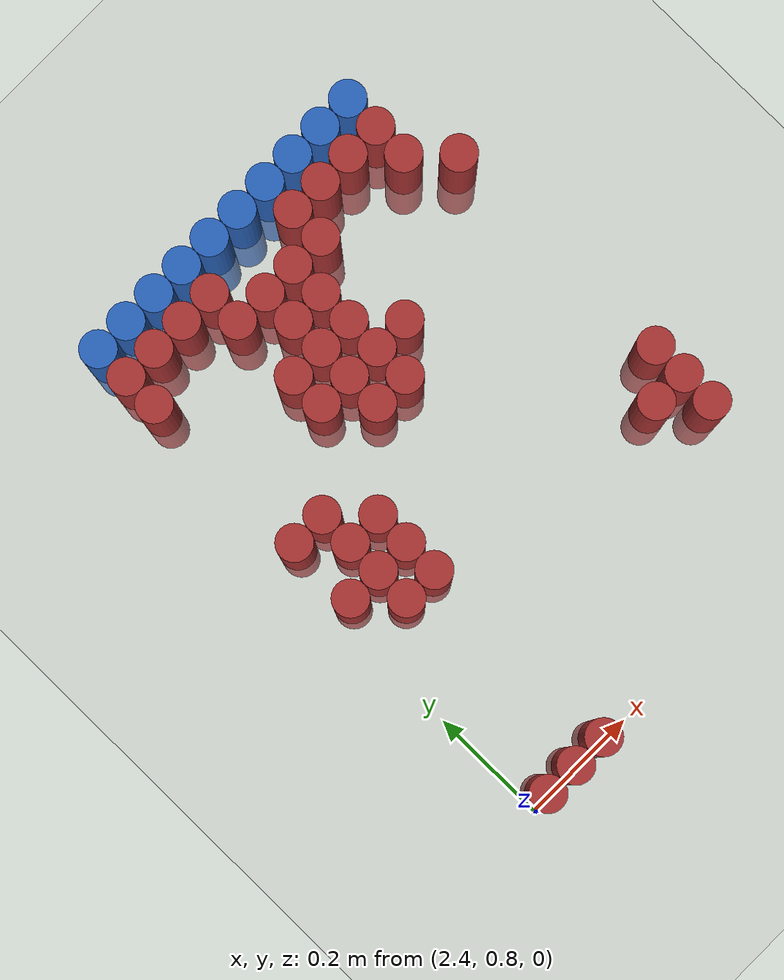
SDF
<sdf version="1.6">
 <world name="default">
  <model name="ground_plane">
   <static>1</static>
   <link name="link">
    <collision name="collision">
     <geometry><plane><normal>0 0 1</normal><size>100 100</size></plane></geometry>
     <surface><friction><ode><mu>100</mu><mu2>50</mu2></ode></friction></surface>
    </collision>
    <visual name="visual">
     <cast_shadows>0</cast_shadows>
     <geometry><plane><normal>0 0 1</normal><size>100 100</size></plane></geometry>
     <material>
      <script><uri>file://media/materials/scripts/gazebo.material</uri><name>Gazebo/Grey</name></script>
     </material>
    </visual>
   </link>
  </model>
  <model name="unit_cylinder_101">
   <static>1</static>
   <pose>2.430000 1.770000 0.000000 0.000000 0.000000 0.000000</pose>
   <link name="link">
    <inertial>
     <mass>1</mass>
     <inertia><ixx>0.145833</ixx><ixy>0</ixy><ixz>0</ixz><iyy>0.145833</iyy><iyz>0</iyz><izz>0.125</izz></inertia>
    </inertial>
    <collision name="collision">
     <geometry><cylinder><radius>0.030000</radius><length>0.5</length></cylinder></geometry>
    </collision>
    <visual name="visual">
     <geometry><cylinder><radius>0.030000</radius><length>0.5</length></cylinder></geometry>
     <material>
      <ambient>0.152000 0.379000 0.720000 1</ambient>
      <diffuse>0.152000 0.379000 0.720000 1</diffuse>
     </material>
     <material>
      <script><name>Gazebo/Grey</name><uri>file://media/materials/scripts/gazebo.material</uri></script>
     </material>
    </visual>
   </link>
  </model>
  <model name="unit_cylinder_102">
   <static>1</static>
   <pose>2.490000 1.770000 0.000000 0.000000 0.000000 0.000000</pose>
   <link name="link">
    <inertial>
     <mass>1</mass>
     <inertia><ixx>0.145833</ixx><ixy>0</ixy><ixz>0</ixz><iyy>0.145833</iyy><iyz>0</iyz><izz>0.125</izz></inertia>
    </inertial>
    <collision name="collision">
     <geometry><cylinder><radius>0.030000</radius><length>0.5</length></cylinder></geometry>
    </collision>
    <visual name="visual">
     <geometry><cylinder><radius>0.030000</radius><length>0.5</length></cylinder></geometry>
     <material>
      <ambient>0.152000 0.379000 0.720000 1</ambient>
      <diffuse>0.152000 0.379000 0.720000 1</diffuse>
     </material>
     <material>
      <script><name>Gazebo/Grey</name><uri>file://media/materials/scripts/gazebo.material</uri></script>
     </material>
    </visual>
   </link>
  </model>
  <model name="unit_cylinder_103">
   <static>1</static>
   <pose>2.550000 1.770000 0.000000 0.000000 0.000000 0.000000</pose>
   <link name="link">
    <inertial>
     <mass>1</mass>
     <inertia><ixx>0.145833</ixx><ixy>0</ixy><ixz>0</ixz><iyy>0.145833</iyy><iyz>0</iyz><izz>0.125</izz></inertia>
    </inertial>
    <collision name="collision">
     <geometry><cylinder><radius>0.030000</radius><length>0.5</length></cylinder></geometry>
    </collision>
    <visual name="visual">
     <geometry><cylinder><radius>0.030000</radius><length>0.5</length></cylinder></geometry>
     <material>
      <ambient>0.152000 0.379000 0.720000 1</ambient>
      <diffuse>0.152000 0.379000 0.720000 1</diffuse>
     </material>
     <material>
      <script><name>Gazebo/Grey</name><uri>file://media/materials/scripts/gazebo.material</uri></script>
     </material>
    </visual>
   </link>
  </model>
  <model name="unit_cylinder_104">
   <static>1</static>
   <pose>2.610000 1.770000 0.000000 0.000000 0.000000 0.000000</pose>
   <link name="link">
    <inertial>
     <mass>1</mass>
     <inertia><ixx>0.145833</ixx><ixy>0</ixy><ixz>0</ixz><iyy>0.145833</iyy><iyz>0</iyz><izz>0.125</izz></inertia>
    </inertial>
    <collision name="collision">
     <geometry><cylinder><radius>0.030000</radius><length>0.5</length></cylinder></geometry>
    </collision>
    <visual name="visual">
     <geometry><cylinder><radius>0.030000</radius><length>0.5</length></cylinder></geometry>
     <material>
      <ambient>0.152000 0.379000 0.720000 1</ambient>
      <diffuse>0.152000 0.379000 0.720000 1</diffuse>
     </material>
     <material>
      <script><name>Gazebo/Grey</name><uri>file://media/materials/scripts/gazebo.material</uri></script>
     </material>
    </visual>
   </link>
  </model>
  <model name="unit_cylinder_105">
   <static>1</static>
   <pose>2.670000 1.770000 0.000000 0.000000 0.000000 0.000000</pose>
   <link name="link">
    <inertial>
     <mass>1</mass>
     <inertia><ixx>0.145833</ixx><ixy>0</ixy><ixz>0</ixz><iyy>0.145833</iyy><iyz>0</iyz><izz>0.125</izz></inertia>
    </inertial>
    <collision name="collision">
     <geometry><cylinder><radius>0.030000</radius><length>0.5</length></cylinder></geometry>
    </collision>
    <visual name="visual">
     <geometry><cylinder><radius>0.030000</radius><length>0.5</length></cylinder></geometry>
     <material>
      <ambient>0.152000 0.379000 0.720000 1</ambient>
      <diffuse>0.152000 0.379000 0.720000 1</diffuse>
     </material>
     <material>
      <script><name>Gazebo/Grey</name><uri>file://media/materials/scripts/gazebo.material</uri></script>
     </material>
    </visual>
   </link>
  </model>
  <model name="unit_cylinder_106">
   <static>1</static>
   <pose>2.730000 1.770000 0.000000 0.000000 0.000000 0.000000</pose>
   <link name="link">
    <inertial>
     <mass>1</mass>
     <inertia><ixx>0.145833</ixx><ixy>0</ixy><ixz>0</ixz><iyy>0.145833</iyy><iyz>0</iyz><izz>0.125</izz></inertia>
    </inertial>
    <collision name="collision">
     <geometry><cylinder><radius>0.030000</radius><length>0.5</length></cylinder></geometry>
    </collision>
    <visual name="visual">
     <geometry><cylinder><radius>0.030000</radius><length>0.5</length></cylinder></geometry>
     <material>
      <ambient>0.152000 0.379000 0.720000 1</ambient>
      <diffuse>0.152000 0.379000 0.720000 1</diffuse>
     </material>
     <material>
      <script><name>Gazebo/Grey</name><uri>file://media/materials/scripts/gazebo.material</uri></script>
     </material>
    </visual>
   </link>
  </model>
  <model name="unit_cylinder_107">
   <static>1</static>
   <pose>2.790000 1.770000 0.000000 0.000000 0.000000 0.000000</pose>
   <link name="link">
    <inertial>
     <mass>1</mass>
     <inertia><ixx>0.145833</ixx><ixy>0</ixy><ixz>0</ixz><iyy>0.145833</iyy><iyz>0</iyz><izz>0.125</izz></inertia>
    </inertial>
    <collision name="collision">
     <geometry><cylinder><radius>0.030000</radius><length>0.5</length></cylinder></geometry>
    </collision>
    <visual name="visual">
     <geometry><cylinder><radius>0.030000</radius><length>0.5</length></cylinder></geometry>
     <material>
      <ambient>0.152000 0.379000 0.720000 1</ambient>
      <diffuse>0.152000 0.379000 0.720000 1</diffuse>
     </material>
     <material>
      <script><name>Gazebo/Grey</name><uri>file://media/materials/scripts/gazebo.material</uri></script>
     </material>
    </visual>
   </link>
  </model>
  <model name="unit_cylinder_108">
   <static>1</static>
   <pose>2.850000 1.770000 0.000000 0.000000 0.000000 0.000000</pose>
   <link name="link">
    <inertial>
     <mass>1</mass>
     <inertia><ixx>0.145833</ixx><ixy>0</ixy><ixz>0</ixz><iyy>0.145833</iyy><iyz>0</iyz><izz>0.125</izz></inertia>
    </inertial>
    <collision name="collision">
     <geometry><cylinder><radius>0.030000</radius><length>0.5</length></cylinder></geometry>
    </collision>
    <visual name="visual">
     <geometry><cylinder><radius>0.030000</radius><length>0.5</length></cylinder></geometry>
     <material>
      <ambient>0.152000 0.379000 0.720000 1</ambient>
      <diffuse>0.152000 0.379000 0.720000 1</diffuse>
     </material>
     <material>
      <script><name>Gazebo/Grey</name><uri>file://media/materials/scripts/gazebo.material</uri></script>
     </material>
    </visual>
   </link>
  </model>
  <model name="unit_cylinder_109">
   <static>1</static>
   <pose>2.910000 1.770000 0.000000 0.000000 0.000000 0.000000</pose>
   <link name="link">
    <inertial>
     <mass>1</mass>
     <inertia><ixx>0.145833</ixx><ixy>0</ixy><ixz>0</ixz><iyy>0.145833</iyy><iyz>0</iyz><izz>0.125</izz></inertia>
    </inertial>
    <collision name="collision">
     <geometry><cylinder><radius>0.030000</radius><length>0.5</length></cylinder></geometry>
    </collision>
    <visual name="visual">
     <geometry><cylinder><radius>0.030000</radius><length>0.5</length></cylinder></geometry>
     <material>
      <ambient>0.152000 0.379000 0.720000 1</ambient>
      <diffuse>0.152000 0.379000 0.720000 1</diffuse>
     </material>
     <material>
      <script><name>Gazebo/Grey</name><uri>file://media/materials/scripts/gazebo.material</uri></script>
     </material>
    </visual>
   </link>
  </model>
  <model name="unit_cylinder_110">
   <static>1</static>
   <pose>2.970000 1.770000 0.000000 0.000000 0.000000 0.000000</pose>
   <link name="link">
    <inertial>
     <mass>1</mass>
     <inertia><ixx>0.145833</ixx><ixy>0</ixy><ixz>0</ixz><iyy>0.145833</iyy><iyz>0</iyz><izz>0.125</izz></inertia>
    </inertial>
    <collision name="collision">
     <geometry><cylinder><radius>0.030000</radius><length>0.5</length></cylinder></geometry>
    </collision>
    <visual name="visual">
     <geometry><cylinder><radius>0.030000</radius><length>0.5</length></cylinder></geometry>
     <material>
      <ambient>0.152000 0.379000 0.720000 1</ambient>
      <diffuse>0.152000 0.379000 0.720000 1</diffuse>
     </material>
     <material>
      <script><name>Gazebo/Grey</name><uri>file://media/materials/scripts/gazebo.material</uri></script>
     </material>
    </visual>
   </link>
  </model>
  <model name="unit_cylinder_131">
   <static>1</static>
   <pose>2.430000 1.710000 0.000000 0.000000 0.000000 0.000000</pose>
   <link name="link">
    <inertial>
     <mass>1</mass>
     <inertia><ixx>0.145833</ixx><ixy>0</ixy><ixz>0</ixz><iyy>0.145833</iyy><iyz>0</iyz><izz>0.125</izz></inertia>
    </inertial>
    <collision name="collision">
     <geometry><cylinder><radius>0.030000</radius><length>0.5</length></cylinder></geometry>
    </collision>
    <visual name="visual">
     <geometry><cylinder><radius>0.030000</radius><length>0.5</length></cylinder></geometry>
     <material>
      <ambient>0.648000 0.192000 0.192000 1</ambient>
      <diffuse>0.648000 0.192000 0.192000 1</diffuse>
     </material>
     <material>
      <script><name>Gazebo/Grey</name><uri>file://media/materials/scripts/gazebo.material</uri></script>
     </material>
    </visual>
   </link>
  </model>
  <model name="unit_cylinder_132">
   <static>1</static>
   <pose>2.490000 1.710000 0.000000 0.000000 0.000000 0.000000</pose>
   <link name="link">
    <inertial>
     <mass>1</mass>
     <inertia><ixx>0.145833</ixx><ixy>0</ixy><ixz>0</ixz><iyy>0.145833</iyy><iyz>0</iyz><izz>0.125</izz></inertia>
    </inertial>
    <collision name="collision">
     <geometry><cylinder><radius>0.030000</radius><length>0.5</length></cylinder></geometry>
    </collision>
    <visual name="visual">
     <geometry><cylinder><radius>0.030000</radius><length>0.5</length></cylinder></geometry>
     <material>
      <ambient>0.648000 0.192000 0.192000 1</ambient>
      <diffuse>0.648000 0.192000 0.192000 1</diffuse>
     </material>
     <material>
      <script><name>Gazebo/Grey</name><uri>file://media/materials/scripts/gazebo.material</uri></script>
     </material>
    </visual>
   </link>
  </model>
  <model name="unit_cylinder_133">
   <static>1</static>
   <pose>2.550000 1.710000 0.000000 0.000000 0.000000 0.000000</pose>
   <link name="link">
    <inertial>
     <mass>1</mass>
     <inertia><ixx>0.145833</ixx><ixy>0</ixy><ixz>0</ixz><iyy>0.145833</iyy><iyz>0</iyz><izz>0.125</izz></inertia>
    </inertial>
    <collision name="collision">
     <geometry><cylinder><radius>0.030000</radius><length>0.5</length></cylinder></geometry>
    </collision>
    <visual name="visual">
     <geometry><cylinder><radius>0.030000</radius><length>0.5</length></cylinder></geometry>
     <material>
      <ambient>0.648000 0.192000 0.192000 1</ambient>
      <diffuse>0.648000 0.192000 0.192000 1</diffuse>
     </material>
     <material>
      <script><name>Gazebo/Grey</name><uri>file://media/materials/scripts/gazebo.material</uri></script>
     </material>
    </visual>
   </link>
  </model>
  <model name="unit_cylinder_134">
   <static>1</static>
   <pose>2.610000 1.710000 0.000000 0.000000 0.000000 0.000000</pose>
   <link name="link">
    <inertial>
     <mass>1</mass>
     <inertia><ixx>0.145833</ixx><ixy>0</ixy><ixz>0</ixz><iyy>0.145833</iyy><iyz>0</iyz><izz>0.125</izz></inertia>
    </inertial>
    <collision name="collision">
     <geometry><cylinder><radius>0.030000</radius><length>0.5</length></cylinder></geometry>
    </collision>
    <visual name="visual">
     <geometry><cylinder><radius>0.030000</radius><length>0.5</length></cylinder></geometry>
     <material>
      <ambient>0.648000 0.192000 0.192000 1</ambient>
      <diffuse>0.648000 0.192000 0.192000 1</diffuse>
     </material>
     <material>
      <script><name>Gazebo/Grey</name><uri>file://media/materials/scripts/gazebo.material</uri></script>
     </material>
    </visual>
   </link>
  </model>
  <model name="unit_cylinder_135">
   <static>1</static>
   <pose>2.790000 1.710000 0.000000 0.000000 0.000000 0.000000</pose>
   <link name="link">
    <inertial>
     <mass>1</mass>
     <inertia><ixx>0.145833</ixx><ixy>0</ixy><ixz>0</ixz><iyy>0.145833</iyy><iyz>0</iyz><izz>0.125</izz></inertia>
    </inertial>
    <collision name="collision">
     <geometry><cylinder><radius>0.030000</radius><length>0.5</length></cylinder></geometry>
    </collision>
    <visual name="visual">
     <geometry><cylinder><radius>0.030000</radius><length>0.5</length></cylinder></geometry>
     <material>
      <ambient>0.648000 0.192000 0.192000 1</ambient>
      <diffuse>0.648000 0.192000 0.192000 1</diffuse>
     </material>
     <material>
      <script><name>Gazebo/Grey</name><uri>file://media/materials/scripts/gazebo.material</uri></script>
     </material>
    </visual>
   </link>
  </model>
  <model name="unit_cylinder_136">
   <static>1</static>
   <pose>2.850000 1.710000 0.000000 0.000000 0.000000 0.000000</pose>
   <link name="link">
    <inertial>
     <mass>1</mass>
     <inertia><ixx>0.145833</ixx><ixy>0</ixy><ixz>0</ixz><iyy>0.145833</iyy><iyz>0</iyz><izz>0.125</izz></inertia>
    </inertial>
    <collision name="collision">
     <geometry><cylinder><radius>0.030000</radius><length>0.5</length></cylinder></geometry>
    </collision>
    <visual name="visual">
     <geometry><cylinder><radius>0.030000</radius><length>0.5</length></cylinder></geometry>
     <material>
      <ambient>0.648000 0.192000 0.192000 1</ambient>
      <diffuse>0.648000 0.192000 0.192000 1</diffuse>
     </material>
     <material>
      <script><name>Gazebo/Grey</name><uri>file://media/materials/scripts/gazebo.material</uri></script>
     </material>
    </visual>
   </link>
  </model>
  <model name="unit_cylinder_137">
   <static>1</static>
   <pose>2.910000 1.710000 0.000000 0.000000 0.000000 0.000000</pose>
   <link name="link">
    <inertial>
     <mass>1</mass>
     <inertia><ixx>0.145833</ixx><ixy>0</ixy><ixz>0</ixz><iyy>0.145833</iyy><iyz>0</iyz><izz>0.125</izz></inertia>
    </inertial>
    <collision name="collision">
     <geometry><cylinder><radius>0.030000</radius><length>0.5</length></cylinder></geometry>
    </collision>
    <visual name="visual">
     <geometry><cylinder><radius>0.030000</radius><length>0.5</length></cylinder></geometry>
     <material>
      <ambient>0.648000 0.192000 0.192000 1</ambient>
      <diffuse>0.648000 0.192000 0.192000 1</diffuse>
     </material>
     <material>
      <script><name>Gazebo/Grey</name><uri>file://media/materials/scripts/gazebo.material</uri></script>
     </material>
    </visual>
   </link>
  </model>
  <model name="unit_cylinder_138">
   <static>1</static>
   <pose>2.970000 1.710000 0.000000 0.000000 0.000000 0.000000</pose>
   <link name="link">
    <inertial>
     <mass>1</mass>
     <inertia><ixx>0.145833</ixx><ixy>0</ixy><ixz>0</ixz><iyy>0.145833</iyy><iyz>0</iyz><izz>0.125</izz></inertia>
    </inertial>
    <collision name="collision">
     <geometry><cylinder><radius>0.030000</radius><length>0.5</length></cylinder></geometry>
    </collision>
    <visual name="visual">
     <geometry><cylinder><radius>0.030000</radius><length>0.5</length></cylinder></geometry>
     <material>
      <ambient>0.648000 0.192000 0.192000 1</ambient>
      <diffuse>0.648000 0.192000 0.192000 1</diffuse>
     </material>
     <material>
      <script><name>Gazebo/Grey</name><uri>file://media/materials/scripts/gazebo.material</uri></script>
     </material>
    </visual>
   </link>
  </model>
  <model name="unit_cylinder_148">
   <static>1</static>
   <pose>2.430000 1.650000 0.000000 0.000000 0.000000 0.000000</pose>
   <link name="link">
    <inertial>
     <mass>1</mass>
     <inertia><ixx>0.145833</ixx><ixy>0</ixy><ixz>0</ixz><iyy>0.145833</iyy><iyz>0</iyz><izz>0.125</izz></inertia>
    </inertial>
    <collision name="collision">
     <geometry><cylinder><radius>0.030000</radius><length>0.5</length></cylinder></geometry>
    </collision>
    <visual name="visual">
     <geometry><cylinder><radius>0.030000</radius><length>0.5</length></cylinder></geometry>
     <material>
      <ambient>0.648000 0.192000 0.192000 1</ambient>
      <diffuse>0.648000 0.192000 0.192000 1</diffuse>
     </material>
     <material>
      <script><name>Gazebo/Grey</name><uri>file://media/materials/scripts/gazebo.material</uri></script>
     </material>
    </visual>
   </link>
  </model>
  <model name="unit_cylinder_149">
   <static>1</static>
   <pose>2.610000 1.650000 0.000000 0.000000 0.000000 0.000000</pose>
   <link name="link">
    <inertial>
     <mass>1</mass>
     <inertia><ixx>0.145833</ixx><ixy>0</ixy><ixz>0</ixz><iyy>0.145833</iyy><iyz>0</iyz><izz>0.125</izz></inertia>
    </inertial>
    <collision name="collision">
     <geometry><cylinder><radius>0.030000</radius><length>0.5</length></cylinder></geometry>
    </collision>
    <visual name="visual">
     <geometry><cylinder><radius>0.030000</radius><length>0.5</length></cylinder></geometry>
     <material>
      <ambient>0.648000 0.192000 0.192000 1</ambient>
      <diffuse>0.648000 0.192000 0.192000 1</diffuse>
     </material>
     <material>
      <script><name>Gazebo/Grey</name><uri>file://media/materials/scripts/gazebo.material</uri></script>
     </material>
    </visual>
   </link>
  </model>
  <model name="unit_cylinder_150">
   <static>1</static>
   <pose>2.670000 1.650000 0.000000 0.000000 0.000000 0.000000</pose>
   <link name="link">
    <inertial>
     <mass>1</mass>
     <inertia><ixx>0.145833</ixx><ixy>0</ixy><ixz>0</ixz><iyy>0.145833</iyy><iyz>0</iyz><izz>0.125</izz></inertia>
    </inertial>
    <collision name="collision">
     <geometry><cylinder><radius>0.030000</radius><length>0.5</length></cylinder></geometry>
    </collision>
    <visual name="visual">
     <geometry><cylinder><radius>0.030000</radius><length>0.5</length></cylinder></geometry>
     <material>
      <ambient>0.648000 0.192000 0.192000 1</ambient>
      <diffuse>0.648000 0.192000 0.192000 1</diffuse>
     </material>
     <material>
      <script><name>Gazebo/Grey</name><uri>file://media/materials/scripts/gazebo.material</uri></script>
     </material>
    </visual>
   </link>
  </model>
  <model name="unit_cylinder_151">
   <static>1</static>
   <pose>2.730000 1.650000 0.000000 0.000000 0.000000 0.000000</pose>
   <link name="link">
    <inertial>
     <mass>1</mass>
     <inertia><ixx>0.145833</ixx><ixy>0</ixy><ixz>0</ixz><iyy>0.145833</iyy><iyz>0</iyz><izz>0.125</izz></inertia>
    </inertial>
    <collision name="collision">
     <geometry><cylinder><radius>0.030000</radius><length>0.5</length></cylinder></geometry>
    </collision>
    <visual name="visual">
     <geometry><cylinder><radius>0.030000</radius><length>0.5</length></cylinder></geometry>
     <material>
      <ambient>0.648000 0.192000 0.192000 1</ambient>
      <diffuse>0.648000 0.192000 0.192000 1</diffuse>
     </material>
     <material>
      <script><name>Gazebo/Grey</name><uri>file://media/materials/scripts/gazebo.material</uri></script>
     </material>
    </visual>
   </link>
  </model>
  <model name="unit_cylinder_152">
   <static>1</static>
   <pose>2.790000 1.650000 0.000000 0.000000 0.000000 0.000000</pose>
   <link name="link">
    <inertial>
     <mass>1</mass>
     <inertia><ixx>0.145833</ixx><ixy>0</ixy><ixz>0</ixz><iyy>0.145833</iyy><iyz>0</iyz><izz>0.125</izz></inertia>
    </inertial>
    <collision name="collision">
     <geometry><cylinder><radius>0.030000</radius><length>0.5</length></cylinder></geometry>
    </collision>
    <visual name="visual">
     <geometry><cylinder><radius>0.030000</radius><length>0.5</length></cylinder></geometry>
     <material>
      <ambient>0.648000 0.192000 0.192000 1</ambient>
      <diffuse>0.648000 0.192000 0.192000 1</diffuse>
     </material>
     <material>
      <script><name>Gazebo/Grey</name><uri>file://media/materials/scripts/gazebo.material</uri></script>
     </material>
    </visual>
   </link>
  </model>
  <model name="unit_cylinder_153">
   <static>1</static>
   <pose>2.970000 1.650000 0.000000 0.000000 0.000000 0.000000</pose>
   <link name="link">
    <inertial>
     <mass>1</mass>
     <inertia><ixx>0.145833</ixx><ixy>0</ixy><ixz>0</ixz><iyy>0.145833</iyy><iyz>0</iyz><izz>0.125</izz></inertia>
    </inertial>
    <collision name="collision">
     <geometry><cylinder><radius>0.030000</radius><length>0.5</length></cylinder></geometry>
    </collision>
    <visual name="visual">
     <geometry><cylinder><radius>0.030000</radius><length>0.5</length></cylinder></geometry>
     <material>
      <ambient>0.648000 0.192000 0.192000 1</ambient>
      <diffuse>0.648000 0.192000 0.192000 1</diffuse>
     </material>
     <material>
      <script><name>Gazebo/Grey</name><uri>file://media/materials/scripts/gazebo.material</uri></script>
     </material>
    </visual>
   </link>
  </model>
  <model name="unit_cylinder_156">
   <static>1</static>
   <pose>2.670000 1.590000 0.000000 0.000000 0.000000 0.000000</pose>
   <link name="link">
    <inertial>
     <mass>1</mass>
     <inertia><ixx>0.145833</ixx><ixy>0</ixy><ixz>0</ixz><iyy>0.145833</iyy><iyz>0</iyz><izz>0.125</izz></inertia>
    </inertial>
    <collision name="collision">
     <geometry><cylinder><radius>0.030000</radius><length>0.5</length></cylinder></geometry>
    </collision>
    <visual name="visual">
     <geometry><cylinder><radius>0.030000</radius><length>0.5</length></cylinder></geometry>
     <material>
      <ambient>0.648000 0.192000 0.192000 1</ambient>
      <diffuse>0.648000 0.192000 0.192000 1</diffuse>
     </material>
     <material>
      <script><name>Gazebo/Grey</name><uri>file://media/materials/scripts/gazebo.material</uri></script>
     </material>
    </visual>
   </link>
  </model>
  <model name="unit_cylinder_157">
   <static>1</static>
   <pose>2.730000 1.590000 0.000000 0.000000 0.000000 0.000000</pose>
   <link name="link">
    <inertial>
     <mass>1</mass>
     <inertia><ixx>0.145833</ixx><ixy>0</ixy><ixz>0</ixz><iyy>0.145833</iyy><iyz>0</iyz><izz>0.125</izz></inertia>
    </inertial>
    <collision name="collision">
     <geometry><cylinder><radius>0.030000</radius><length>0.5</length></cylinder></geometry>
    </collision>
    <visual name="visual">
     <geometry><cylinder><radius>0.030000</radius><length>0.5</length></cylinder></geometry>
     <material>
      <ambient>0.648000 0.192000 0.192000 1</ambient>
      <diffuse>0.648000 0.192000 0.192000 1</diffuse>
     </material>
     <material>
      <script><name>Gazebo/Grey</name><uri>file://media/materials/scripts/gazebo.material</uri></script>
     </material>
    </visual>
   </link>
  </model>
  <model name="unit_cylinder_158">
   <static>1</static>
   <pose>3.030000 1.590000 0.000000 0.000000 0.000000 0.000000</pose>
   <link name="link">
    <inertial>
     <mass>1</mass>
     <inertia><ixx>0.145833</ixx><ixy>0</ixy><ixz>0</ixz><iyy>0.145833</iyy><iyz>0</iyz><izz>0.125</izz></inertia>
    </inertial>
    <collision name="collision">
     <geometry><cylinder><radius>0.030000</radius><length>0.5</length></cylinder></geometry>
    </collision>
    <visual name="visual">
     <geometry><cylinder><radius>0.030000</radius><length>0.5</length></cylinder></geometry>
     <material>
      <ambient>0.648000 0.192000 0.192000 1</ambient>
      <diffuse>0.648000 0.192000 0.192000 1</diffuse>
     </material>
     <material>
      <script><name>Gazebo/Grey</name><uri>file://media/materials/scripts/gazebo.material</uri></script>
     </material>
    </visual>
   </link>
  </model>
  <model name="unit_cylinder_161">
   <static>1</static>
   <pose>2.610000 1.530000 0.000000 0.000000 0.000000 0.000000</pose>
   <link name="link">
    <inertial>
     <mass>1</mass>
     <inertia><ixx>0.145833</ixx><ixy>0</ixy><ixz>0</ixz><iyy>0.145833</iyy><iyz>0</iyz><izz>0.125</izz></inertia>
    </inertial>
    <collision name="collision">
     <geometry><cylinder><radius>0.030000</radius><length>0.5</length></cylinder></geometry>
    </collision>
    <visual name="visual">
     <geometry><cylinder><radius>0.030000</radius><length>0.5</length></cylinder></geometry>
     <material>
      <ambient>0.648000 0.192000 0.192000 1</ambient>
      <diffuse>0.648000 0.192000 0.192000 1</diffuse>
     </material>
     <material>
      <script><name>Gazebo/Grey</name><uri>file://media/materials/scripts/gazebo.material</uri></script>
     </material>
    </visual>
   </link>
  </model>
  <model name="unit_cylinder_162">
   <static>1</static>
   <pose>2.670000 1.530000 0.000000 0.000000 0.000000 0.000000</pose>
   <link name="link">
    <inertial>
     <mass>1</mass>
     <inertia><ixx>0.145833</ixx><ixy>0</ixy><ixz>0</ixz><iyy>0.145833</iyy><iyz>0</iyz><izz>0.125</izz></inertia>
    </inertial>
    <collision name="collision">
     <geometry><cylinder><radius>0.030000</radius><length>0.5</length></cylinder></geometry>
    </collision>
    <visual name="visual">
     <geometry><cylinder><radius>0.030000</radius><length>0.5</length></cylinder></geometry>
     <material>
      <ambient>0.648000 0.192000 0.192000 1</ambient>
      <diffuse>0.648000 0.192000 0.192000 1</diffuse>
     </material>
     <material>
      <script><name>Gazebo/Grey</name><uri>file://media/materials/scripts/gazebo.material</uri></script>
     </material>
    </visual>
   </link>
  </model>
  <model name="unit_cylinder_163">
   <static>1</static>
   <pose>2.730000 1.530000 0.000000 0.000000 0.000000 0.000000</pose>
   <link name="link">
    <inertial>
     <mass>1</mass>
     <inertia><ixx>0.145833</ixx><ixy>0</ixy><ixz>0</ixz><iyy>0.145833</iyy><iyz>0</iyz><izz>0.125</izz></inertia>
    </inertial>
    <collision name="collision">
     <geometry><cylinder><radius>0.030000</radius><length>0.5</length></cylinder></geometry>
    </collision>
    <visual name="visual">
     <geometry><cylinder><radius>0.030000</radius><length>0.5</length></cylinder></geometry>
     <material>
      <ambient>0.648000 0.192000 0.192000 1</ambient>
      <diffuse>0.648000 0.192000 0.192000 1</diffuse>
     </material>
     <material>
      <script><name>Gazebo/Grey</name><uri>file://media/materials/scripts/gazebo.material</uri></script>
     </material>
    </visual>
   </link>
  </model>
  <model name="unit_cylinder_166">
   <static>1</static>
   <pose>2.610000 1.470000 0.000000 0.000000 0.000000 0.000000</pose>
   <link name="link">
    <inertial>
     <mass>1</mass>
     <inertia><ixx>0.145833</ixx><ixy>0</ixy><ixz>0</ixz><iyy>0.145833</iyy><iyz>0</iyz><izz>0.125</izz></inertia>
    </inertial>
    <collision name="collision">
     <geometry><cylinder><radius>0.030000</radius><length>0.5</length></cylinder></geometry>
    </collision>
    <visual name="visual">
     <geometry><cylinder><radius>0.030000</radius><length>0.5</length></cylinder></geometry>
     <material>
      <ambient>0.648000 0.192000 0.192000 1</ambient>
      <diffuse>0.648000 0.192000 0.192000 1</diffuse>
     </material>
     <material>
      <script><name>Gazebo/Grey</name><uri>file://media/materials/scripts/gazebo.material</uri></script>
     </material>
    </visual>
   </link>
  </model>
  <model name="unit_cylinder_167">
   <static>1</static>
   <pose>2.670000 1.470000 0.000000 0.000000 0.000000 0.000000</pose>
   <link name="link">
    <inertial>
     <mass>1</mass>
     <inertia><ixx>0.145833</ixx><ixy>0</ixy><ixz>0</ixz><iyy>0.145833</iyy><iyz>0</iyz><izz>0.125</izz></inertia>
    </inertial>
    <collision name="collision">
     <geometry><cylinder><radius>0.030000</radius><length>0.5</length></cylinder></geometry>
    </collision>
    <visual name="visual">
     <geometry><cylinder><radius>0.030000</radius><length>0.5</length></cylinder></geometry>
     <material>
      <ambient>0.648000 0.192000 0.192000 1</ambient>
      <diffuse>0.648000 0.192000 0.192000 1</diffuse>
     </material>
     <material>
      <script><name>Gazebo/Grey</name><uri>file://media/materials/scripts/gazebo.material</uri></script>
     </material>
    </visual>
   </link>
  </model>
  <model name="unit_cylinder_168">
   <static>1</static>
   <pose>2.730000 1.470000 0.000000 0.000000 0.000000 0.000000</pose>
   <link name="link">
    <inertial>
     <mass>1</mass>
     <inertia><ixx>0.145833</ixx><ixy>0</ixy><ixz>0</ixz><iyy>0.145833</iyy><iyz>0</iyz><izz>0.125</izz></inertia>
    </inertial>
    <collision name="collision">
     <geometry><cylinder><radius>0.030000</radius><length>0.5</length></cylinder></geometry>
    </collision>
    <visual name="visual">
     <geometry><cylinder><radius>0.030000</radius><length>0.5</length></cylinder></geometry>
     <material>
      <ambient>0.648000 0.192000 0.192000 1</ambient>
      <diffuse>0.648000 0.192000 0.192000 1</diffuse>
     </material>
     <material>
      <script><name>Gazebo/Grey</name><uri>file://media/materials/scripts/gazebo.material</uri></script>
     </material>
    </visual>
   </link>
  </model>
  <model name="unit_cylinder_169">
   <static>1</static>
   <pose>2.790000 1.470000 0.000000 0.000000 0.000000 0.000000</pose>
   <link name="link">
    <inertial>
     <mass>1</mass>
     <inertia><ixx>0.145833</ixx><ixy>0</ixy><ixz>0</ixz><iyy>0.145833</iyy><iyz>0</iyz><izz>0.125</izz></inertia>
    </inertial>
    <collision name="collision">
     <geometry><cylinder><radius>0.030000</radius><length>0.5</length></cylinder></geometry>
    </collision>
    <visual name="visual">
     <geometry><cylinder><radius>0.030000</radius><length>0.5</length></cylinder></geometry>
     <material>
      <ambient>0.648000 0.192000 0.192000 1</ambient>
      <diffuse>0.648000 0.192000 0.192000 1</diffuse>
     </material>
     <material>
      <script><name>Gazebo/Grey</name><uri>file://media/materials/scripts/gazebo.material</uri></script>
     </material>
    </visual>
   </link>
  </model>
  <model name="unit_cylinder_176">
   <static>1</static>
   <pose>2.670000 1.410000 0.000000 0.000000 0.000000 0.000000</pose>
   <link name="link">
    <inertial>
     <mass>1</mass>
     <inertia><ixx>0.145833</ixx><ixy>0</ixy><ixz>0</ixz><iyy>0.145833</iyy><iyz>0</iyz><izz>0.125</izz></inertia>
    </inertial>
    <collision name="collision">
     <geometry><cylinder><radius>0.030000</radius><length>0.5</length></cylinder></geometry>
    </collision>
    <visual name="visual">
     <geometry><cylinder><radius>0.030000</radius><length>0.5</length></cylinder></geometry>
     <material>
      <ambient>0.648000 0.192000 0.192000 1</ambient>
      <diffuse>0.648000 0.192000 0.192000 1</diffuse>
     </material>
     <material>
      <script><name>Gazebo/Grey</name><uri>file://media/materials/scripts/gazebo.material</uri></script>
     </material>
    </visual>
   </link>
  </model>
  <model name="unit_cylinder_177">
   <static>1</static>
   <pose>2.730000 1.410000 0.000000 0.000000 0.000000 0.000000</pose>
   <link name="link">
    <inertial>
     <mass>1</mass>
     <inertia><ixx>0.145833</ixx><ixy>0</ixy><ixz>0</ixz><iyy>0.145833</iyy><iyz>0</iyz><izz>0.125</izz></inertia>
    </inertial>
    <collision name="collision">
     <geometry><cylinder><radius>0.030000</radius><length>0.5</length></cylinder></geometry>
    </collision>
    <visual name="visual">
     <geometry><cylinder><radius>0.030000</radius><length>0.5</length></cylinder></geometry>
     <material>
      <ambient>0.648000 0.192000 0.192000 1</ambient>
      <diffuse>0.648000 0.192000 0.192000 1</diffuse>
     </material>
     <material>
      <script><name>Gazebo/Grey</name><uri>file://media/materials/scripts/gazebo.material</uri></script>
     </material>
    </visual>
   </link>
  </model>
  <model name="unit_cylinder_188">
   <static>1</static>
   <pose>2.430000 1.350000 0.000000 0.000000 0.000000 0.000000</pose>
   <link name="link">
    <inertial>
     <mass>1</mass>
     <inertia><ixx>0.145833</ixx><ixy>0</ixy><ixz>0</ixz><iyy>0.145833</iyy><iyz>0</iyz><izz>0.125</izz></inertia>
    </inertial>
    <collision name="collision">
     <geometry><cylinder><radius>0.030000</radius><length>0.5</length></cylinder></geometry>
    </collision>
    <visual name="visual">
     <geometry><cylinder><radius>0.030000</radius><length>0.5</length></cylinder></geometry>
     <material>
      <ambient>0.648000 0.192000 0.192000 1</ambient>
      <diffuse>0.648000 0.192000 0.192000 1</diffuse>
     </material>
     <material>
      <script><name>Gazebo/Grey</name><uri>file://media/materials/scripts/gazebo.material</uri></script>
     </material>
    </visual>
   </link>
  </model>
  <model name="unit_cylinder_189">
   <static>1</static>
   <pose>2.490000 1.350000 0.000000 0.000000 0.000000 0.000000</pose>
   <link name="link">
    <inertial>
     <mass>1</mass>
     <inertia><ixx>0.145833</ixx><ixy>0</ixy><ixz>0</ixz><iyy>0.145833</iyy><iyz>0</iyz><izz>0.125</izz></inertia>
    </inertial>
    <collision name="collision">
     <geometry><cylinder><radius>0.030000</radius><length>0.5</length></cylinder></geometry>
    </collision>
    <visual name="visual">
     <geometry><cylinder><radius>0.030000</radius><length>0.5</length></cylinder></geometry>
     <material>
      <ambient>0.648000 0.192000 0.192000 1</ambient>
      <diffuse>0.648000 0.192000 0.192000 1</diffuse>
     </material>
     <material>
      <script><name>Gazebo/Grey</name><uri>file://media/materials/scripts/gazebo.material</uri></script>
     </material>
    </visual>
   </link>
  </model>
  <model name="unit_cylinder_197">
   <static>1</static>
   <pose>2.490000 1.290000 0.000000 0.000000 0.000000 0.000000</pose>
   <link name="link">
    <inertial>
     <mass>1</mass>
     <inertia><ixx>0.145833</ixx><ixy>0</ixy><ixz>0</ixz><iyy>0.145833</iyy><iyz>0</iyz><izz>0.125</izz></inertia>
    </inertial>
    <collision name="collision">
     <geometry><cylinder><radius>0.030000</radius><length>0.5</length></cylinder></geometry>
    </collision>
    <visual name="visual">
     <geometry><cylinder><radius>0.030000</radius><length>0.5</length></cylinder></geometry>
     <material>
      <ambient>0.648000 0.192000 0.192000 1</ambient>
      <diffuse>0.648000 0.192000 0.192000 1</diffuse>
     </material>
     <material>
      <script><name>Gazebo/Grey</name><uri>file://media/materials/scripts/gazebo.material</uri></script>
     </material>
    </visual>
   </link>
  </model>
  <model name="unit_cylinder_198">
   <static>1</static>
   <pose>2.550000 1.290000 0.000000 0.000000 0.000000 0.000000</pose>
   <link name="link">
    <inertial>
     <mass>1</mass>
     <inertia><ixx>0.145833</ixx><ixy>0</ixy><ixz>0</ixz><iyy>0.145833</iyy><iyz>0</iyz><izz>0.125</izz></inertia>
    </inertial>
    <collision name="collision">
     <geometry><cylinder><radius>0.030000</radius><length>0.5</length></cylinder></geometry>
    </collision>
    <visual name="visual">
     <geometry><cylinder><radius>0.030000</radius><length>0.5</length></cylinder></geometry>
     <material>
      <ambient>0.648000 0.192000 0.192000 1</ambient>
      <diffuse>0.648000 0.192000 0.192000 1</diffuse>
     </material>
     <material>
      <script><name>Gazebo/Grey</name><uri>file://media/materials/scripts/gazebo.material</uri></script>
     </material>
    </visual>
   </link>
  </model>
  <model name="unit_cylinder_206">
   <static>1</static>
   <pose>2.430000 1.230000 0.000000 0.000000 0.000000 0.000000</pose>
   <link name="link">
    <inertial>
     <mass>1</mass>
     <inertia><ixx>0.145833</ixx><ixy>0</ixy><ixz>0</ixz><iyy>0.145833</iyy><iyz>0</iyz><izz>0.125</izz></inertia>
    </inertial>
    <collision name="collision">
     <geometry><cylinder><radius>0.030000</radius><length>0.5</length></cylinder></geometry>
    </collision>
    <visual name="visual">
     <geometry><cylinder><radius>0.030000</radius><length>0.5</length></cylinder></geometry>
     <material>
      <ambient>0.648000 0.192000 0.192000 1</ambient>
      <diffuse>0.648000 0.192000 0.192000 1</diffuse>
     </material>
     <material>
      <script><name>Gazebo/Grey</name><uri>file://media/materials/scripts/gazebo.material</uri></script>
     </material>
    </visual>
   </link>
  </model>
  <model name="unit_cylinder_207">
   <static>1</static>
   <pose>2.490000 1.230000 0.000000 0.000000 0.000000 0.000000</pose>
   <link name="link">
    <inertial>
     <mass>1</mass>
     <inertia><ixx>0.145833</ixx><ixy>0</ixy><ixz>0</ixz><iyy>0.145833</iyy><iyz>0</iyz><izz>0.125</izz></inertia>
    </inertial>
    <collision name="collision">
     <geometry><cylinder><radius>0.030000</radius><length>0.5</length></cylinder></geometry>
    </collision>
    <visual name="visual">
     <geometry><cylinder><radius>0.030000</radius><length>0.5</length></cylinder></geometry>
     <material>
      <ambient>0.648000 0.192000 0.192000 1</ambient>
      <diffuse>0.648000 0.192000 0.192000 1</diffuse>
     </material>
     <material>
      <script><name>Gazebo/Grey</name><uri>file://media/materials/scripts/gazebo.material</uri></script>
     </material>
    </visual>
   </link>
  </model>
  <model name="unit_cylinder_208">
   <static>1</static>
   <pose>2.550000 1.230000 0.000000 0.000000 0.000000 0.000000</pose>
   <link name="link">
    <inertial>
     <mass>1</mass>
     <inertia><ixx>0.145833</ixx><ixy>0</ixy><ixz>0</ixz><iyy>0.145833</iyy><iyz>0</iyz><izz>0.125</izz></inertia>
    </inertial>
    <collision name="collision">
     <geometry><cylinder><radius>0.030000</radius><length>0.5</length></cylinder></geometry>
    </collision>
    <visual name="visual">
     <geometry><cylinder><radius>0.030000</radius><length>0.5</length></cylinder></geometry>
     <material>
      <ambient>0.648000 0.192000 0.192000 1</ambient>
      <diffuse>0.648000 0.192000 0.192000 1</diffuse>
     </material>
     <material>
      <script><name>Gazebo/Grey</name><uri>file://media/materials/scripts/gazebo.material</uri></script>
     </material>
    </visual>
   </link>
  </model>
  <model name="unit_cylinder_212">
   <static>1</static>
   <pose>2.490000 1.170000 0.000000 0.000000 0.000000 0.000000</pose>
   <link name="link">
    <inertial>
     <mass>1</mass>
     <inertia><ixx>0.145833</ixx><ixy>0</ixy><ixz>0</ixz><iyy>0.145833</iyy><iyz>0</iyz><izz>0.125</izz></inertia>
    </inertial>
    <collision name="collision">
     <geometry><cylinder><radius>0.030000</radius><length>0.5</length></cylinder></geometry>
    </collision>
    <visual name="visual">
     <geometry><cylinder><radius>0.030000</radius><length>0.5</length></cylinder></geometry>
     <material>
      <ambient>0.648000 0.192000 0.192000 1</ambient>
      <diffuse>0.648000 0.192000 0.192000 1</diffuse>
     </material>
     <material>
      <script><name>Gazebo/Grey</name><uri>file://media/materials/scripts/gazebo.material</uri></script>
     </material>
    </visual>
   </link>
  </model>
  <model name="unit_cylinder_213">
   <static>1</static>
   <pose>2.550000 1.170000 0.000000 0.000000 0.000000 0.000000</pose>
   <link name="link">
    <inertial>
     <mass>1</mass>
     <inertia><ixx>0.145833</ixx><ixy>0</ixy><ixz>0</ixz><iyy>0.145833</iyy><iyz>0</iyz><izz>0.125</izz></inertia>
    </inertial>
    <collision name="collision">
     <geometry><cylinder><radius>0.030000</radius><length>0.5</length></cylinder></geometry>
    </collision>
    <visual name="visual">
     <geometry><cylinder><radius>0.030000</radius><length>0.5</length></cylinder></geometry>
     <material>
      <ambient>0.648000 0.192000 0.192000 1</ambient>
      <diffuse>0.648000 0.192000 0.192000 1</diffuse>
     </material>
     <material>
      <script><name>Gazebo/Grey</name><uri>file://media/materials/scripts/gazebo.material</uri></script>
     </material>
    </visual>
   </link>
  </model>
  <model name="unit_cylinder_214">
   <static>1</static>
   <pose>3.030000 1.170000 0.000000 0.000000 0.000000 0.000000</pose>
   <link name="link">
    <inertial>
     <mass>1</mass>
     <inertia><ixx>0.145833</ixx><ixy>0</ixy><ixz>0</ixz><iyy>0.145833</iyy><iyz>0</iyz><izz>0.125</izz></inertia>
    </inertial>
    <collision name="collision">
     <geometry><cylinder><radius>0.030000</radius><length>0.5</length></cylinder></geometry>
    </collision>
    <visual name="visual">
     <geometry><cylinder><radius>0.030000</radius><length>0.5</length></cylinder></geometry>
     <material>
      <ambient>0.648000 0.192000 0.192000 1</ambient>
      <diffuse>0.648000 0.192000 0.192000 1</diffuse>
     </material>
     <material>
      <script><name>Gazebo/Grey</name><uri>file://media/materials/scripts/gazebo.material</uri></script>
     </material>
    </visual>
   </link>
  </model>
  <model name="unit_cylinder_220">
   <static>1</static>
   <pose>2.970000 1.110000 0.000000 0.000000 0.000000 0.000000</pose>
   <link name="link">
    <inertial>
     <mass>1</mass>
     <inertia><ixx>0.145833</ixx><ixy>0</ixy><ixz>0</ixz><iyy>0.145833</iyy><iyz>0</iyz><izz>0.125</izz></inertia>
    </inertial>
    <collision name="collision">
     <geometry><cylinder><radius>0.030000</radius><length>0.5</length></cylinder></geometry>
    </collision>
    <visual name="visual">
     <geometry><cylinder><radius>0.030000</radius><length>0.5</length></cylinder></geometry>
     <material>
      <ambient>0.648000 0.192000 0.192000 1</ambient>
      <diffuse>0.648000 0.192000 0.192000 1</diffuse>
     </material>
     <material>
      <script><name>Gazebo/Grey</name><uri>file://media/materials/scripts/gazebo.material</uri></script>
     </material>
    </visual>
   </link>
  </model>
  <model name="unit_cylinder_221">
   <static>1</static>
   <pose>3.030000 1.110000 0.000000 0.000000 0.000000 0.000000</pose>
   <link name="link">
    <inertial>
     <mass>1</mass>
     <inertia><ixx>0.145833</ixx><ixy>0</ixy><ixz>0</ixz><iyy>0.145833</iyy><iyz>0</iyz><izz>0.125</izz></inertia>
    </inertial>
    <collision name="collision">
     <geometry><cylinder><radius>0.030000</radius><length>0.5</length></cylinder></geometry>
    </collision>
    <visual name="visual">
     <geometry><cylinder><radius>0.030000</radius><length>0.5</length></cylinder></geometry>
     <material>
      <ambient>0.648000 0.192000 0.192000 1</ambient>
      <diffuse>0.648000 0.192000 0.192000 1</diffuse>
     </material>
     <material>
      <script><name>Gazebo/Grey</name><uri>file://media/materials/scripts/gazebo.material</uri></script>
     </material>
    </visual>
   </link>
  </model>
  <model name="unit_cylinder_224">
   <static>1</static>
   <pose>3.030000 1.050000 0.000000 0.000000 0.000000 0.000000</pose>
   <link name="link">
    <inertial>
     <mass>1</mass>
     <inertia><ixx>0.145833</ixx><ixy>0</ixy><ixz>0</ixz><iyy>0.145833</iyy><iyz>0</iyz><izz>0.125</izz></inertia>
    </inertial>
    <collision name="collision">
     <geometry><cylinder><radius>0.030000</radius><length>0.5</length></cylinder></geometry>
    </collision>
    <visual name="visual">
     <geometry><cylinder><radius>0.030000</radius><length>0.5</length></cylinder></geometry>
     <material>
      <ambient>0.648000 0.192000 0.192000 1</ambient>
      <diffuse>0.648000 0.192000 0.192000 1</diffuse>
     </material>
     <material>
      <script><name>Gazebo/Grey</name><uri>file://media/materials/scripts/gazebo.material</uri></script>
     </material>
    </visual>
   </link>
  </model>
  <model name="unit_cylinder_226">
   <static>1</static>
   <pose>2.430000 0.810000 0.000000 0.000000 0.000000 0.000000</pose>
   <link name="link">
    <inertial>
     <mass>1</mass>
     <inertia><ixx>0.145833</ixx><ixy>0</ixy><ixz>0</ixz><iyy>0.145833</iyy><iyz>0</iyz><izz>0.125</izz></inertia>
    </inertial>
    <collision name="collision">
     <geometry><cylinder><radius>0.030000</radius><length>0.5</length></cylinder></geometry>
    </collision>
    <visual name="visual">
     <geometry><cylinder><radius>0.030000</radius><length>0.5</length></cylinder></geometry>
     <material>
      <ambient>0.648000 0.192000 0.192000 1</ambient>
      <diffuse>0.648000 0.192000 0.192000 1</diffuse>
     </material>
     <material>
      <script><name>Gazebo/Grey</name><uri>file://media/materials/scripts/gazebo.material</uri></script>
     </material>
    </visual>
   </link>
  </model>
  <model name="unit_cylinder_227">
   <static>1</static>
   <pose>2.490000 0.810000 0.000000 0.000000 0.000000 0.000000</pose>
   <link name="link">
    <inertial>
     <mass>1</mass>
     <inertia><ixx>0.145833</ixx><ixy>0</ixy><ixz>0</ixz><iyy>0.145833</iyy><iyz>0</iyz><izz>0.125</izz></inertia>
    </inertial>
    <collision name="collision">
     <geometry><cylinder><radius>0.030000</radius><length>0.5</length></cylinder></geometry>
    </collision>
    <visual name="visual">
     <geometry><cylinder><radius>0.030000</radius><length>0.5</length></cylinder></geometry>
     <material>
      <ambient>0.648000 0.192000 0.192000 1</ambient>
      <diffuse>0.648000 0.192000 0.192000 1</diffuse>
     </material>
     <material>
      <script><name>Gazebo/Grey</name><uri>file://media/materials/scripts/gazebo.material</uri></script>
     </material>
    </visual>
   </link>
  </model>
  <model name="unit_cylinder_228">
   <static>1</static>
   <pose>2.550000 0.810000 0.000000 0.000000 0.000000 0.000000</pose>
   <link name="link">
    <inertial>
     <mass>1</mass>
     <inertia><ixx>0.145833</ixx><ixy>0</ixy><ixz>0</ixz><iyy>0.145833</iyy><iyz>0</iyz><izz>0.125</izz></inertia>
    </inertial>
    <collision name="collision">
     <geometry><cylinder><radius>0.030000</radius><length>0.5</length></cylinder></geometry>
    </collision>
    <visual name="visual">
     <geometry><cylinder><radius>0.030000</radius><length>0.5</length></cylinder></geometry>
     <material>
      <ambient>0.648000 0.192000 0.192000 1</ambient>
      <diffuse>0.648000 0.192000 0.192000 1</diffuse>
     </material>
     <material>
      <script><name>Gazebo/Grey</name><uri>file://media/materials/scripts/gazebo.material</uri></script>
     </material>
    </visual>
   </link>
  </model>
 </world>
</sdf>
